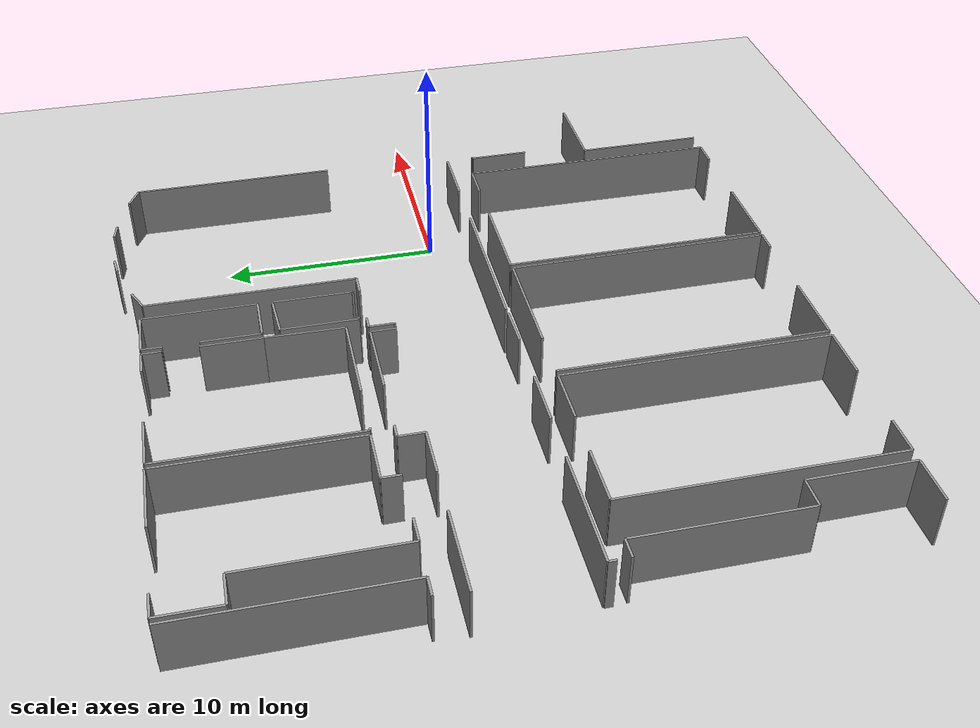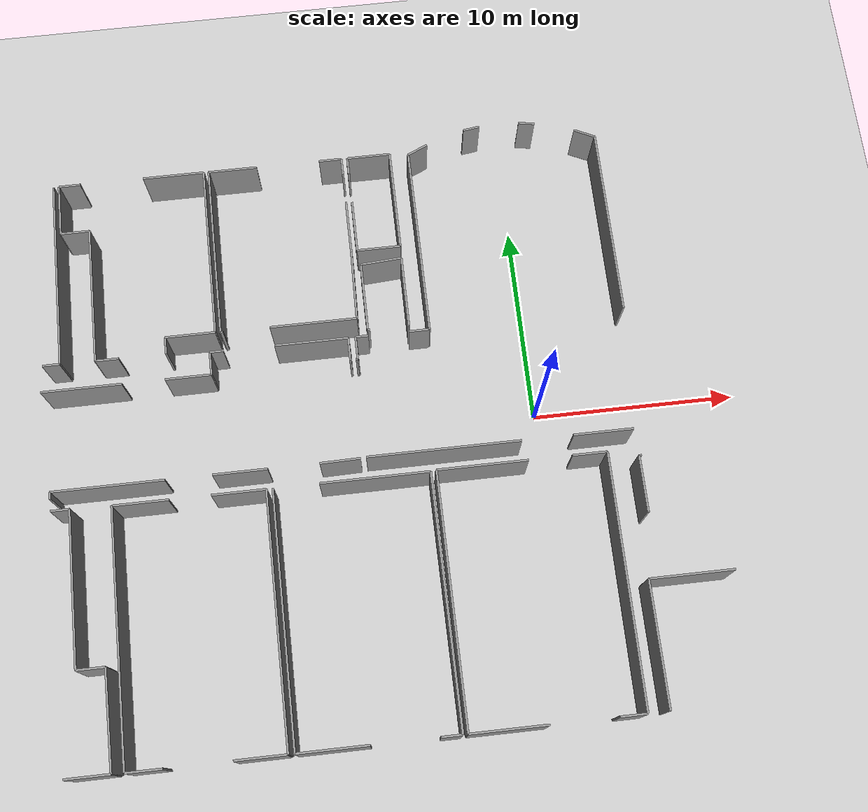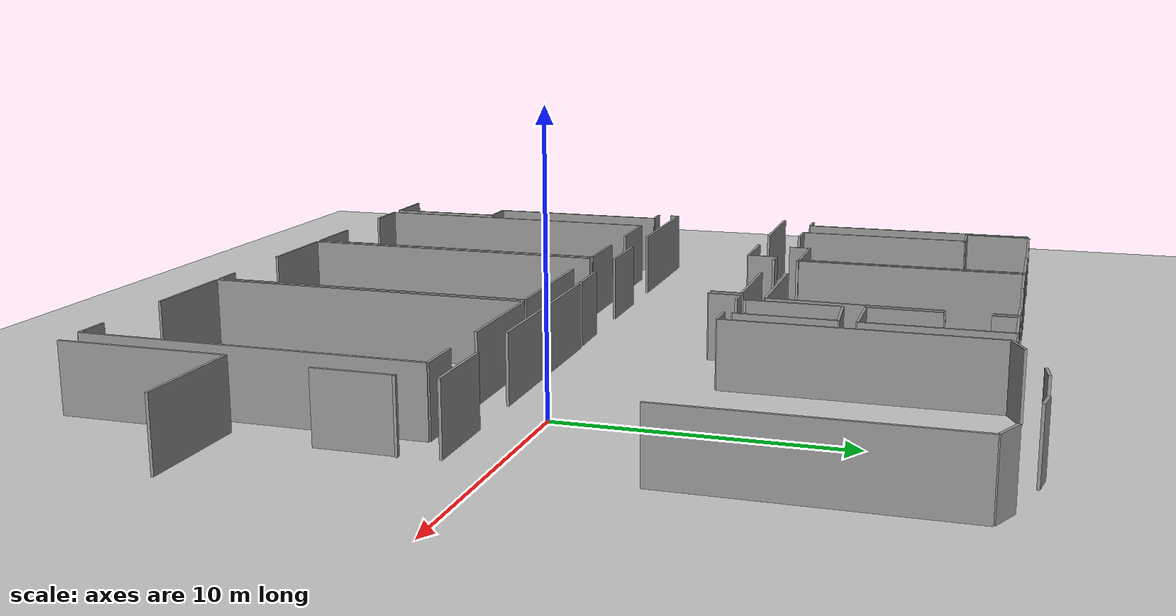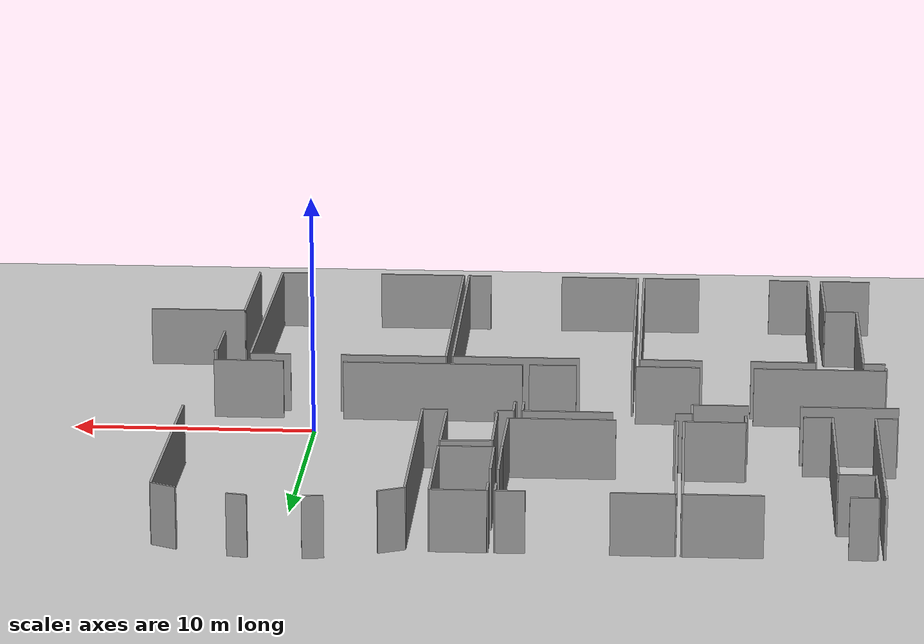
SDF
<sdf version="1.6">
 <world name="default">
  <model name="ground_plane">
   <static>1</static>
   <link name="link">
    <collision name="collision">
     <geometry><plane><normal>0 0 1</normal><size>100 100</size></plane></geometry>
     <surface><friction><ode><mu>100</mu><mu2>50</mu2></ode></friction></surface>
    </collision>
    <visual name="visual">
     <cast_shadows>0</cast_shadows>
     <geometry><plane><normal>0 0 1</normal><size>100 100</size></plane></geometry>
     <material>
      <script><uri>file://media/materials/scripts/gazebo.material</uri><name>Gazebo/Grey</name></script>
     </material>
    </visual>
   </link>
  </model>
  <model name="50056459">
   <static>1</static>
   <link name="Wall_7">
    <collision name="Wall_7_Collision">
     <geometry><box><size>1.16222145053 0.1 2.5</size></box></geometry>
     <pose>0.581110725266 0 1.25 0 0 0</pose>
    </collision>
    <visual name="Wall_7_Visual">
     <pose>0.581110725266 0 1.25 0 0 0</pose>
     <geometry><box><size>1.16222145053 0.1 2.5</size></box></geometry>
     <material>
      <script><uri>file://media/materials/scripts/gazebo.material</uri><name>Gazebo/Grey</name></script>
      <ambient>1 1 1 1</ambient>
     </material>
    </visual>
    <pose>46.2513318709 -11.9738792381 0 0 0 1.57079632679</pose>
   </link>
   <link name="Wall_8">
    <collision name="Wall_8_Collision">
     <geometry><box><size>3.63200555617 0.1 2.5</size></box></geometry>
     <pose>1.81600277808 0 1.25 0 0 0</pose>
    </collision>
    <visual name="Wall_8_Visual">
     <pose>1.81600277808 0 1.25 0 0 0</pose>
     <geometry><box><size>3.63200555617 0.1 2.5</size></box></geometry>
     <material>
      <script><uri>file://media/materials/scripts/gazebo.material</uri><name>Gazebo/Grey</name></script>
      <ambient>1 1 1 1</ambient>
     </material>
    </visual>
    <pose>46.2513318709 -10.8116577875 0 0 0 3.14159265359</pose>
   </link>
   <link name="Wall_9">
    <collision name="Wall_9_Collision">
     <geometry><box><size>0.666062489942 0.1 2.5</size></box></geometry>
     <pose>0.333031244971 0 1.25 0 0 0</pose>
    </collision>
    <visual name="Wall_9_Visual">
     <pose>0.333031244971 0 1.25 0 0 0</pose>
     <geometry><box><size>0.666062489942 0.1 2.5</size></box></geometry>
     <material>
      <script><uri>file://media/materials/scripts/gazebo.material</uri><name>Gazebo/Grey</name></script>
      <ambient>1 1 1 1</ambient>
     </material>
    </visual>
    <pose>40.1153243497 -10.8116577875 0 0 0 3.14159265359</pose>
   </link>
   <link name="Wall_10">
    <collision name="Wall_10_Collision">
     <geometry><box><size>1.16222145053 0.1 2.5</size></box></geometry>
     <pose>0.581110725266 0 1.25 0 0 0</pose>
    </collision>
    <visual name="Wall_10_Visual">
     <pose>0.581110725266 0 1.25 0 0 0</pose>
     <geometry><box><size>1.16222145053 0.1 2.5</size></box></geometry>
     <material>
      <script><uri>file://media/materials/scripts/gazebo.material</uri><name>Gazebo/Grey</name></script>
      <ambient>1 1 1 1</ambient>
     </material>
    </visual>
    <pose>39.4492618598 -10.8116577875 0 0 0 -1.57079632679</pose>
   </link>
   <link name="Wall_11">
    <collision name="Wall_11_Collision">
     <geometry><box><size>2.26329118213 0.1 2.5</size></box></geometry>
     <pose>1.13164559106 0 1.25 0 0 0</pose>
    </collision>
    <visual name="Wall_11_Visual">
     <pose>1.13164559106 0 1.25 0 0 0</pose>
     <geometry><box><size>2.26329118213 0.1 2.5</size></box></geometry>
     <material>
      <script><uri>file://media/materials/scripts/gazebo.material</uri><name>Gazebo/Grey</name></script>
      <ambient>1 1 1 1</ambient>
     </material>
    </visual>
    <pose>39.4492618598 -11.9738792381 0 0 0 3.14159265359</pose>
   </link>
   <link name="Wall_12">
    <collision name="Wall_12_Collision">
     <geometry><box><size>3.95148517367 0.1 2.5</size></box></geometry>
     <pose>1.97574258684 0 1.25 0 0 0</pose>
    </collision>
    <visual name="Wall_12_Visual">
     <pose>1.97574258684 0 1.25 0 0 0</pose>
     <geometry><box><size>3.95148517367 0.1 2.5</size></box></geometry>
     <material>
      <script><uri>file://media/materials/scripts/gazebo.material</uri><name>Gazebo/Grey</name></script>
      <ambient>1 1 1 1</ambient>
     </material>
    </visual>
    <pose>35.1035937222 -11.9738792381 0 0 0 3.14159265359</pose>
   </link>
   <link name="Wall_34">
    <collision name="Wall_34_Collision">
     <geometry><box><size>0.353019895483 0.1 2.5</size></box></geometry>
     <pose>0.176509947742 0 1.25 0 0 0</pose>
    </collision>
    <visual name="Wall_34_Visual">
     <pose>0.176509947742 0 1.25 0 0 0</pose>
     <geometry><box><size>0.353019895483 0.1 2.5</size></box></geometry>
     <material>
      <script><uri>file://media/materials/scripts/gazebo.material</uri><name>Gazebo/Grey</name></script>
      <ambient>1 1 1 1</ambient>
     </material>
    </visual>
    <pose>31.4314414697 -17.3587878069 0 0 0 1.57079632679</pose>
   </link>
   <link name="Wall_35">
    <collision name="Wall_35_Collision">
     <geometry><box><size>5.46875926381 0.1 2.5</size></box></geometry>
     <pose>2.7343796319 0 1.25 0 0 0</pose>
    </collision>
    <visual name="Wall_35_Visual">
     <pose>2.7343796319 0 1.25 0 0 0</pose>
     <geometry><box><size>5.46875926381 0.1 2.5</size></box></geometry>
     <material>
      <script><uri>file://media/materials/scripts/gazebo.material</uri><name>Gazebo/Grey</name></script>
      <ambient>1 1 1 1</ambient>
     </material>
    </visual>
    <pose>31.4314414697 -17.0057679114 0 0 0 0.0</pose>
   </link>
   <link name="Wall_36">
    <collision name="Wall_36_Collision">
     <geometry><box><size>2.65374744848 0.1 2.5</size></box></geometry>
     <pose>1.32687372424 0 1.25 0 0 0</pose>
    </collision>
    <visual name="Wall_36_Visual">
     <pose>1.32687372424 0 1.25 0 0 0</pose>
     <geometry><box><size>2.65374744848 0.1 2.5</size></box></geometry>
     <material>
      <script><uri>file://media/materials/scripts/gazebo.material</uri><name>Gazebo/Grey</name></script>
      <ambient>1 1 1 1</ambient>
     </material>
    </visual>
    <pose>39.1521424276 -17.0057679114 0 0 0 0.0</pose>
   </link>
   <link name="Wall_37">
    <collision name="Wall_37_Collision">
     <geometry><box><size>1.96681117286 0.1 2.5</size></box></geometry>
     <pose>0.983405586429 0 1.25 0 0 0</pose>
    </collision>
    <visual name="Wall_37_Visual">
     <pose>0.983405586429 0 1.25 0 0 0</pose>
     <geometry><box><size>1.96681117286 0.1 2.5</size></box></geometry>
     <material>
      <script><uri>file://media/materials/scripts/gazebo.material</uri><name>Gazebo/Grey</name></script>
      <ambient>1 1 1 1</ambient>
     </material>
    </visual>
    <pose>44.2848213303 -17.0057679114 0 0 0 0.0174846509602</pose>
   </link>
   <link name="Wall_53">
    <collision name="Wall_53_Collision">
     <geometry><box><size>0.864593832316 0.1 2.5</size></box></geometry>
     <pose>0.432296916158 0 1.25 0 0 0</pose>
    </collision>
    <visual name="Wall_53_Visual">
     <pose>0.432296916158 0 1.25 0 0 0</pose>
     <geometry><box><size>0.864593832316 0.1 2.5</size></box></geometry>
     <material>
      <script><uri>file://media/materials/scripts/gazebo.material</uri><name>Gazebo/Grey</name></script>
      <ambient>1 1 1 1</ambient>
     </material>
    </visual>
    <pose>32.1332463771 -10.6236289564 0 0 0 3.14159265359</pose>
   </link>
   <link name="Wall_58">
    <collision name="Wall_58_Collision">
     <geometry><box><size>9.56507748002 0.1 2.5</size></box></geometry>
     <pose>4.78253874001 0 1.25 0 0 0</pose>
    </collision>
    <visual name="Wall_58_Visual">
     <pose>4.78253874001 0 1.25 0 0 0</pose>
     <geometry><box><size>9.56507748002 0.1 2.5</size></box></geometry>
     <material>
      <script><uri>file://media/materials/scripts/gazebo.material</uri><name>Gazebo/Grey</name></script>
      <ambient>1 1 1 1</ambient>
     </material>
    </visual>
    <pose>32.1339239584 -1.05855150042 0 0 0 -1.57086716588</pose>
   </link>
   <link name="Wall_59">
    <collision name="Wall_59_Collision">
     <geometry><box><size>2.47266382647 0.1 2.5</size></box></geometry>
     <pose>1.23633191324 0 1.25 0 0 0</pose>
    </collision>
    <visual name="Wall_59_Visual">
     <pose>1.23633191324 0 1.25 0 0 0</pose>
     <geometry><box><size>2.47266382647 0.1 2.5</size></box></geometry>
     <material>
      <script><uri>file://media/materials/scripts/gazebo.material</uri><name>Gazebo/Grey</name></script>
      <ambient>1 1 1 1</ambient>
     </material>
    </visual>
    <pose>39.7850034303 -9.79952061118 0 0 0 3.14159265359</pose>
   </link>
   <link name="Wall_60">
    <collision name="Wall_60_Collision">
     <geometry><box><size>0.84748490264 0.1 2.5</size></box></geometry>
     <pose>0.42374245132 0 1.25 0 0 0</pose>
    </collision>
    <visual name="Wall_60_Visual">
     <pose>0.42374245132 0 1.25 0 0 0</pose>
     <geometry><box><size>0.84748490264 0.1 2.5</size></box></geometry>
     <material>
      <script><uri>file://media/materials/scripts/gazebo.material</uri><name>Gazebo/Grey</name></script>
      <ambient>1 1 1 1</ambient>
     </material>
    </visual>
    <pose>37.3123396038 -9.79952061118 0 0 0 -1.57079632679</pose>
   </link>
   <link name="Wall_61">
    <collision name="Wall_61_Collision">
     <geometry><box><size>1.15273531131 0.1 2.5</size></box></geometry>
     <pose>0.576367655653 0 1.25 0 0 0</pose>
    </collision>
    <visual name="Wall_61_Visual">
     <pose>0.576367655653 0 1.25 0 0 0</pose>
     <geometry><box><size>1.15273531131 0.1 2.5</size></box></geometry>
     <material>
      <script><uri>file://media/materials/scripts/gazebo.material</uri><name>Gazebo/Grey</name></script>
      <ambient>1 1 1 1</ambient>
     </material>
    </visual>
    <pose>35.0044974464 -10.6470055138 0 0 0 3.14159265359</pose>
   </link>
   <link name="Wall_62">
    <collision name="Wall_62_Collision">
     <geometry><box><size>6.97349809854 0.1 2.5</size></box></geometry>
     <pose>3.48674904927 0 1.25 0 0 0</pose>
    </collision>
    <visual name="Wall_62_Visual">
     <pose>3.48674904927 0 1.25 0 0 0</pose>
     <geometry><box><size>6.97349809854 0.1 2.5</size></box></geometry>
     <material>
      <script><uri>file://media/materials/scripts/gazebo.material</uri><name>Gazebo/Grey</name></script>
      <ambient>1 1 1 1</ambient>
     </material>
    </visual>
    <pose>33.8517621351 -10.6470055138 0 0 0 1.57079632679</pose>
   </link>
   <link name="Wall_63">
    <collision name="Wall_63_Collision">
     <geometry><box><size>1.44053799961 0.1 2.5</size></box></geometry>
     <pose>0.720268999805 0 1.25 0 0 0</pose>
    </collision>
    <visual name="Wall_63_Visual">
     <pose>0.720268999805 0 1.25 0 0 0</pose>
     <geometry><box><size>1.44053799961 0.1 2.5</size></box></geometry>
     <material>
      <script><uri>file://media/materials/scripts/gazebo.material</uri><name>Gazebo/Grey</name></script>
      <ambient>1 1 1 1</ambient>
     </material>
    </visual>
    <pose>33.8517621351 -3.67350741528 0 0 0 3.14159265359</pose>
   </link>
   <link name="Wall_64">
    <collision name="Wall_64_Collision">
     <geometry><box><size>2.62461144943 0.1 2.5</size></box></geometry>
     <pose>1.31230572472 0 1.25 0 0 0</pose>
    </collision>
    <visual name="Wall_64_Visual">
     <pose>1.31230572472 0 1.25 0 0 0</pose>
     <geometry><box><size>2.62461144943 0.1 2.5</size></box></geometry>
     <material>
      <script><uri>file://media/materials/scripts/gazebo.material</uri><name>Gazebo/Grey</name></script>
      <ambient>1 1 1 1</ambient>
     </material>
    </visual>
    <pose>32.4112241354 -3.67350741528 0 0 0 1.57079632679</pose>
   </link>
   <link name="Wall_65">
    <collision name="Wall_65_Collision">
     <geometry><box><size>1.09429391786 0.1 2.5</size></box></geometry>
     <pose>0.54714695893 0 1.25 0 0 0</pose>
    </collision>
    <visual name="Wall_65_Visual">
     <pose>0.54714695893 0 1.25 0 0 0</pose>
     <geometry><box><size>1.09429391786 0.1 2.5</size></box></geometry>
     <material>
      <script><uri>file://media/materials/scripts/gazebo.material</uri><name>Gazebo/Grey</name></script>
      <ambient>1 1 1 1</ambient>
     </material>
    </visual>
    <pose>32.4112241354 -1.04889596585 0 0 0 0.0</pose>
   </link>
   <link name="Wall_66">
    <collision name="Wall_66_Collision">
     <geometry><box><size>3.0831646438 0.1 2.5</size></box></geometry>
     <pose>1.5415823219 0 1.25 0 0 0</pose>
    </collision>
    <visual name="Wall_66_Visual">
     <pose>1.5415823219 0 1.25 0 0 0</pose>
     <geometry><box><size>3.0831646438 0.1 2.5</size></box></geometry>
     <material>
      <script><uri>file://media/materials/scripts/gazebo.material</uri><name>Gazebo/Grey</name></script>
      <ambient>1 1 1 1</ambient>
     </material>
    </visual>
    <pose>36.6964181355 -1.04889596585 0 0 0 0.0</pose>
   </link>
   <link name="Wall_67">
    <collision name="Wall_67_Collision">
     <geometry><box><size>8.75062632426 0.1 2.5</size></box></geometry>
     <pose>4.37531316213 0 1.25 0 0 0</pose>
    </collision>
    <visual name="Wall_67_Visual">
     <pose>4.37531316213 0 1.25 0 0 0</pose>
     <geometry><box><size>8.75062632426 0.1 2.5</size></box></geometry>
     <material>
      <script><uri>file://media/materials/scripts/gazebo.material</uri><name>Gazebo/Grey</name></script>
      <ambient>1 1 1 1</ambient>
     </material>
    </visual>
    <pose>39.7795827793 -1.04889596585 0 0 0 -1.57017686813</pose>
   </link>
   <link name="Wall_68">
    <collision name="Wall_68_Collision">
     <geometry><box><size>4.30365809244 0.1 2.5</size></box></geometry>
     <pose>2.15182904622 0 1.25 0 0 0</pose>
    </collision>
    <visual name="Wall_68_Visual">
     <pose>2.15182904622 0 1.25 0 0 0</pose>
     <geometry><box><size>4.30365809244 0.1 2.5</size></box></geometry>
     <material>
      <script><uri>file://media/materials/scripts/gazebo.material</uri><name>Gazebo/Grey</name></script>
      <ambient>1 1 1 1</ambient>
     </material>
    </visual>
    <pose>46.7757798538 -9.83458544725 0 0 0 3.14159265359</pose>
   </link>
   <link name="Wall_69">
    <collision name="Wall_69_Collision">
     <geometry><box><size>0.134499902598 0.1 2.5</size></box></geometry>
     <pose>0.0672499512988 0 1.25 0 0 0</pose>
    </collision>
    <visual name="Wall_69_Visual">
     <pose>0.0672499512988 0 1.25 0 0 0</pose>
     <geometry><box><size>0.134499902598 0.1 2.5</size></box></geometry>
     <material>
      <script><uri>file://media/materials/scripts/gazebo.material</uri><name>Gazebo/Grey</name></script>
      <ambient>1 1 1 1</ambient>
     </material>
    </visual>
    <pose>40.1729187665 -9.83458544725 0 0 0 3.14159265359</pose>
   </link>
   <link name="Wall_70">
    <collision name="Wall_70_Collision">
     <geometry><box><size>8.77603394683 0.1 2.5</size></box></geometry>
     <pose>4.38801697341 0 1.25 0 0 0</pose>
    </collision>
    <visual name="Wall_70_Visual">
     <pose>4.38801697341 0 1.25 0 0 0</pose>
     <geometry><box><size>8.77603394683 0.1 2.5</size></box></geometry>
     <material>
      <script><uri>file://media/materials/scripts/gazebo.material</uri><name>Gazebo/Grey</name></script>
      <ambient>1 1 1 1</ambient>
     </material>
    </visual>
    <pose>40.0384188639 -9.83458544725 0 0 0 1.57079632679</pose>
   </link>
   <link name="Wall_71">
    <collision name="Wall_71_Collision">
     <geometry><box><size>2.46470224534 0.1 2.5</size></box></geometry>
     <pose>1.23235112267 0 1.25 0 0 0</pose>
    </collision>
    <visual name="Wall_71_Visual">
     <pose>1.23235112267 0 1.25 0 0 0</pose>
     <geometry><box><size>2.46470224534 0.1 2.5</size></box></geometry>
     <material>
      <script><uri>file://media/materials/scripts/gazebo.material</uri><name>Gazebo/Grey</name></script>
      <ambient>1 1 1 1</ambient>
     </material>
    </visual>
    <pose>40.0384188639 -1.05855150042 0 0 0 0.0</pose>
   </link>
   <link name="Wall_72">
    <collision name="Wall_72_Collision">
     <geometry><box><size>1.15002498581 0.1 2.5</size></box></geometry>
     <pose>0.575012492907 0 1.25 0 0 0</pose>
    </collision>
    <visual name="Wall_72_Visual">
     <pose>0.575012492907 0 1.25 0 0 0</pose>
     <geometry><box><size>1.15002498581 0.1 2.5</size></box></geometry>
     <material>
      <script><uri>file://media/materials/scripts/gazebo.material</uri><name>Gazebo/Grey</name></script>
      <ambient>1 1 1 1</ambient>
     </material>
    </visual>
    <pose>45.699272447 -1.05855150042 0 0 0 0.0</pose>
   </link>
   <link name="Wall_73">
    <collision name="Wall_73_Collision">
     <geometry><box><size>0.870861460018 0.1 2.5</size></box></geometry>
     <pose>0.435430730009 0 1.25 0 0 0</pose>
    </collision>
    <visual name="Wall_73_Visual">
     <pose>0.435430730009 0 1.25 0 0 0</pose>
     <geometry><box><size>0.870861460018 0.1 2.5</size></box></geometry>
     <material>
      <script><uri>file://media/materials/scripts/gazebo.material</uri><name>Gazebo/Grey</name></script>
      <ambient>1 1 1 1</ambient>
     </material>
    </visual>
    <pose>46.8492974328 -1.05855150042 0 0 0 -1.57079632679</pose>
   </link>
   <link name="Wall_74">
    <collision name="Wall_74_Collision">
     <geometry><box><size>2.7597889334 0.1 2.5</size></box></geometry>
     <pose>1.3798944667 0 1.25 0 0 0</pose>
    </collision>
    <visual name="Wall_74_Visual">
     <pose>1.3798944667 0 1.25 0 0 0</pose>
     <geometry><box><size>2.7597889334 0.1 2.5</size></box></geometry>
     <material>
      <script><uri>file://media/materials/scripts/gazebo.material</uri><name>Gazebo/Grey</name></script>
      <ambient>1 1 1 1</ambient>
     </material>
    </visual>
    <pose>46.8492974328 -3.5069917928 0 0 0 -1.57079632679</pose>
   </link>
   <link name="Wall_75">
    <collision name="Wall_75_Collision">
     <geometry><box><size>3.56856208604 0.1 2.5</size></box></geometry>
     <pose>1.78428104302 0 1.25 0 0 0</pose>
    </collision>
    <visual name="Wall_75_Visual">
     <pose>1.78428104302 0 1.25 0 0 0</pose>
     <geometry><box><size>3.56856208604 0.1 2.5</size></box></geometry>
     <material>
      <script><uri>file://media/materials/scripts/gazebo.material</uri><name>Gazebo/Grey</name></script>
      <ambient>1 1 1 1</ambient>
     </material>
    </visual>
    <pose>46.8492974328 -6.2667807262 0 0 0 -1.59139924153</pose>
   </link>
   <link name="Wall_76">
    <collision name="Wall_76_Collision">
     <geometry><box><size>2.17283406879 0.1 2.5</size></box></geometry>
     <pose>1.0864170344 0 1.25 0 0 0</pose>
    </collision>
    <visual name="Wall_76_Visual">
     <pose>1.0864170344 0 1.25 0 0 0</pose>
     <geometry><box><size>2.17283406879 0.1 2.5</size></box></geometry>
     <material>
      <script><uri>file://media/materials/scripts/gazebo.material</uri><name>Gazebo/Grey</name></script>
      <ambient>1 1 1 1</ambient>
     </material>
    </visual>
    <pose>49.3253491662 -6.21613151854 0 0 0 3.14159265359</pose>
   </link>
   <link name="Wall_77">
    <collision name="Wall_77_Collision">
     <geometry><box><size>2.66967061075 0.1 2.5</size></box></geometry>
     <pose>1.33483530538 0 1.25 0 0 0</pose>
    </collision>
    <visual name="Wall_77_Visual">
     <pose>1.33483530538 0 1.25 0 0 0</pose>
     <geometry><box><size>2.66967061075 0.1 2.5</size></box></geometry>
     <material>
      <script><uri>file://media/materials/scripts/gazebo.material</uri><name>Gazebo/Grey</name></script>
      <ambient>1 1 1 1</ambient>
     </material>
    </visual>
    <pose>47.1525150974 -6.21613151854 0 0 0 1.57079632679</pose>
   </link>
   <link name="Wall_78">
    <collision name="Wall_78_Collision">
     <geometry><box><size>0.900675040443 0.1 2.5</size></box></geometry>
     <pose>0.450337520222 0 1.25 0 0 0</pose>
    </collision>
    <visual name="Wall_78_Visual">
     <pose>0.450337520222 0 1.25 0 0 0</pose>
     <geometry><box><size>0.900675040443 0.1 2.5</size></box></geometry>
     <material>
      <script><uri>file://media/materials/scripts/gazebo.material</uri><name>Gazebo/Grey</name></script>
      <ambient>1 1 1 1</ambient>
     </material>
    </visual>
    <pose>47.1525150974 -1.95922654086 0 0 0 1.57079632679</pose>
   </link>
   <link name="Wall_79">
    <collision name="Wall_79_Collision">
     <geometry><box><size>2.17876290581 0.1 2.5</size></box></geometry>
     <pose>1.0893814529 0 1.25 0 0 0</pose>
    </collision>
    <visual name="Wall_79_Visual">
     <pose>1.0893814529 0 1.25 0 0 0</pose>
     <geometry><box><size>2.17876290581 0.1 2.5</size></box></geometry>
     <material>
      <script><uri>file://media/materials/scripts/gazebo.material</uri><name>Gazebo/Grey</name></script>
      <ambient>1 1 1 1</ambient>
     </material>
    </visual>
    <pose>47.1525150974 -1.05855150042 0 0 0 0.0</pose>
   </link>
   <link name="Wall_80">
    <collision name="Wall_80_Collision">
     <geometry><box><size>5.15758342584 0.1 2.5</size></box></geometry>
     <pose>2.57879171292 0 1.25 0 0 0</pose>
    </collision>
    <visual name="Wall_80_Visual">
     <pose>2.57879171292 0 1.25 0 0 0</pose>
     <geometry><box><size>5.15758342584 0.1 2.5</size></box></geometry>
     <material>
      <script><uri>file://media/materials/scripts/gazebo.material</uri><name>Gazebo/Grey</name></script>
      <ambient>1 1 1 1</ambient>
     </material>
    </visual>
    <pose>49.3312780032 -1.05855150042 0 0 0 -1.57194586483</pose>
   </link>
   <link name="Wall_81">
    <collision name="Wall_81_Collision">
     <geometry><box><size>0.995705828047 0.1 2.5</size></box></geometry>
     <pose>0.497852914023 0 1.25 0 0 0</pose>
    </collision>
    <visual name="Wall_81_Visual">
     <pose>0.497852914023 0 1.25 0 0 0</pose>
     <geometry><box><size>0.995705828047 0.1 2.5</size></box></geometry>
     <material>
      <script><uri>file://media/materials/scripts/gazebo.material</uri><name>Gazebo/Grey</name></script>
      <ambient>1 1 1 1</ambient>
     </material>
    </visual>
    <pose>49.5425139963 -30.2900895254 0 0 0 3.14159265359</pose>
   </link>
   <link name="Wall_82">
    <collision name="Wall_82_Collision">
     <geometry><box><size>3.40061151719 0.1 2.5</size></box></geometry>
     <pose>1.70030575859 0 1.25 0 0 0</pose>
    </collision>
    <visual name="Wall_82_Visual">
     <pose>1.70030575859 0 1.25 0 0 0</pose>
     <geometry><box><size>3.40061151719 0.1 2.5</size></box></geometry>
     <material>
      <script><uri>file://media/materials/scripts/gazebo.material</uri><name>Gazebo/Grey</name></script>
      <ambient>1 1 1 1</ambient>
     </material>
    </visual>
    <pose>45.3591265976 -30.2900895254 0 0 0 3.14159265359</pose>
   </link>
   <link name="Wall_83">
    <collision name="Wall_83_Collision">
     <geometry><box><size>12.3036919715 0.1 2.5</size></box></geometry>
     <pose>6.15184598575 0 1.25 0 0 0</pose>
    </collision>
    <visual name="Wall_83_Visual">
     <pose>6.15184598575 0 1.25 0 0 0</pose>
     <geometry><box><size>12.3036919715 0.1 2.5</size></box></geometry>
     <material>
      <script><uri>file://media/materials/scripts/gazebo.material</uri><name>Gazebo/Grey</name></script>
      <ambient>1 1 1 1</ambient>
     </material>
    </visual>
    <pose>41.9585150804 -30.2900895254 0 0 0 1.57079632679</pose>
   </link>
   <link name="Wall_84">
    <collision name="Wall_84_Collision">
     <geometry><box><size>5.3318878264 0.1 2.5</size></box></geometry>
     <pose>2.6659439132 0 1.25 0 0 0</pose>
    </collision>
    <visual name="Wall_84_Visual">
     <pose>2.6659439132 0 1.25 0 0 0</pose>
     <geometry><box><size>5.3318878264 0.1 2.5</size></box></geometry>
     <material>
      <script><uri>file://media/materials/scripts/gazebo.material</uri><name>Gazebo/Grey</name></script>
      <ambient>1 1 1 1</ambient>
     </material>
    </visual>
    <pose>44.173697985 -17.9863975539 0 0 0 0.0</pose>
   </link>
   <link name="Wall_85">
    <collision name="Wall_85_Collision">
     <geometry><box><size>12.3037473893 0.1 2.5</size></box></geometry>
     <pose>6.15187369467 0 1.25 0 0 0</pose>
    </collision>
    <visual name="Wall_85_Visual">
     <pose>6.15187369467 0 1.25 0 0 0</pose>
     <geometry><box><size>12.3037473893 0.1 2.5</size></box></geometry>
     <material>
      <script><uri>file://media/materials/scripts/gazebo.material</uri><name>Gazebo/Grey</name></script>
      <ambient>1 1 1 1</ambient>
     </material>
    </visual>
    <pose>49.5055858114 -17.9863975539 0 0 0 -1.56779494525</pose>
   </link>
   <link name="Wall_86">
    <collision name="Wall_86_Collision">
     <geometry><box><size>2.46978410563 0.1 2.5</size></box></geometry>
     <pose>1.23489205282 0 1.25 0 0 0</pose>
    </collision>
    <visual name="Wall_86_Visual">
     <pose>1.23489205282 0 1.25 0 0 0</pose>
     <geometry><box><size>2.46978410563 0.1 2.5</size></box></geometry>
     <material>
      <script><uri>file://media/materials/scripts/gazebo.material</uri><name>Gazebo/Grey</name></script>
      <ambient>1 1 1 1</ambient>
     </material>
    </visual>
    <pose>41.6605486715 -30.2885649673 0 0 0 3.14159265359</pose>
   </link>
   <link name="Wall_87">
    <collision name="Wall_87_Collision">
     <geometry><box><size>1.73359194356 0.1 2.5</size></box></geometry>
     <pose>0.866795971779 0 1.25 0 0 0</pose>
    </collision>
    <visual name="Wall_87_Visual">
     <pose>0.866795971779 0 1.25 0 0 0</pose>
     <geometry><box><size>1.73359194356 0.1 2.5</size></box></geometry>
     <material>
      <script><uri>file://media/materials/scripts/gazebo.material</uri><name>Gazebo/Grey</name></script>
      <ambient>1 1 1 1</ambient>
     </material>
    </visual>
    <pose>36.0527158308 -30.2885649673 0 0 0 3.14159265359</pose>
   </link>
   <link name="Wall_88">
    <collision name="Wall_88_Collision">
     <geometry><box><size>12.2948834137 0.1 2.5</size></box></geometry>
     <pose>6.14744170683 0 1.25 0 0 0</pose>
    </collision>
    <visual name="Wall_88_Visual">
     <pose>6.14744170683 0 1.25 0 0 0</pose>
     <geometry><box><size>12.2948834137 0.1 2.5</size></box></geometry>
     <material>
      <script><uri>file://media/materials/scripts/gazebo.material</uri><name>Gazebo/Grey</name></script>
      <ambient>1 1 1 1</ambient>
     </material>
    </visual>
    <pose>34.3191238873 -30.2885649673 0 0 0 1.57079632679</pose>
   </link>
   <link name="Wall_89">
    <collision name="Wall_89_Collision">
     <geometry><box><size>2.70371907476 0.1 2.5</size></box></geometry>
     <pose>1.35185953738 0 1.25 0 0 0</pose>
    </collision>
    <visual name="Wall_89_Visual">
     <pose>1.35185953738 0 1.25 0 0 0</pose>
     <geometry><box><size>2.70371907476 0.1 2.5</size></box></geometry>
     <material>
      <script><uri>file://media/materials/scripts/gazebo.material</uri><name>Gazebo/Grey</name></script>
      <ambient>1 1 1 1</ambient>
     </material>
    </visual>
    <pose>34.3191238873 -17.9936815537 0 0 0 0.0</pose>
   </link>
   <link name="Wall_90">
    <collision name="Wall_90_Collision">
     <geometry><box><size>2.61292317074 0.1 2.5</size></box></geometry>
     <pose>1.30646158537 0 1.25 0 0 0</pose>
    </collision>
    <visual name="Wall_90_Visual">
     <pose>1.30646158537 0 1.25 0 0 0</pose>
     <geometry><box><size>2.61292317074 0.1 2.5</size></box></geometry>
     <material>
      <script><uri>file://media/materials/scripts/gazebo.material</uri><name>Gazebo/Grey</name></script>
      <ambient>1 1 1 1</ambient>
     </material>
    </visual>
    <pose>39.039325129 -17.9936815537 0 0 0 0.0</pose>
   </link>
   <link name="Wall_91">
    <collision name="Wall_91_Collision">
     <geometry><box><size>12.2948862155 0.1 2.5</size></box></geometry>
     <pose>6.14744310774 0 1.25 0 0 0</pose>
    </collision>
    <visual name="Wall_91_Visual">
     <pose>6.14744310774 0 1.25 0 0 0</pose>
     <geometry><box><size>12.2948862155 0.1 2.5</size></box></geometry>
     <material>
      <script><uri>file://media/materials/scripts/gazebo.material</uri><name>Gazebo/Grey</name></script>
      <ambient>1 1 1 1</ambient>
     </material>
    </visual>
    <pose>41.6522482997 -17.9936815537 0 0 0 -1.57012121909</pose>
   </link>
   <link name="Wall_92">
    <collision name="Wall_92_Collision">
     <geometry><box><size>2.14962690676 0.1 2.5</size></box></geometry>
     <pose>1.07481345338 0 1.25 0 0 0</pose>
    </collision>
    <visual name="Wall_92_Visual">
     <pose>1.07481345338 0 1.25 0 0 0</pose>
     <geometry><box><size>2.14962690676 0.1 2.5</size></box></geometry>
     <material>
      <script><uri>file://media/materials/scripts/gazebo.material</uri><name>Gazebo/Grey</name></script>
      <ambient>1 1 1 1</ambient>
     </material>
    </visual>
    <pose>33.7370814876 -30.271117247 0 0 0 3.14159265359</pose>
   </link>
   <link name="Wall_98">
    <collision name="Wall_98_Collision">
     <geometry><box><size>0.900844435786 0.1 2.5</size></box></geometry>
     <pose>0.450422217893 0 1.25 0 0 0</pose>
    </collision>
    <visual name="Wall_98_Visual">
     <pose>0.450422217893 0 1.25 0 0 0</pose>
     <geometry><box><size>0.900844435786 0.1 2.5</size></box></geometry>
     <material>
      <script><uri>file://media/materials/scripts/gazebo.material</uri><name>Gazebo/Grey</name></script>
      <ambient>1 1 1 1</ambient>
     </material>
    </visual>
    <pose>31.4309332836 -17.9350707649 0 0 0 0.0</pose>
   </link>
   <link name="Wall_99">
    <collision name="Wall_99_Collision">
     <geometry><box><size>7.57248003252 0.1 2.5</size></box></geometry>
     <pose>3.78624001626 0 1.25 0 0 0</pose>
    </collision>
    <visual name="Wall_99_Visual">
     <pose>3.78624001626 0 1.25 0 0 0</pose>
     <geometry><box><size>7.57248003252 0.1 2.5</size></box></geometry>
     <material>
      <script><uri>file://media/materials/scripts/gazebo.material</uri><name>Gazebo/Grey</name></script>
      <ambient>1 1 1 1</ambient>
     </material>
    </visual>
    <pose>32.3317777194 -17.9350707649 0 0 0 -1.57079632679</pose>
   </link>
   <link name="Wall_100">
    <collision name="Wall_100_Collision">
     <geometry><box><size>1.36939195542 0.1 2.5</size></box></geometry>
     <pose>0.684695977708 0 1.25 0 0 0</pose>
    </collision>
    <visual name="Wall_100_Visual">
     <pose>0.684695977708 0 1.25 0 0 0</pose>
     <geometry><box><size>1.36939195542 0.1 2.5</size></box></geometry>
     <material>
      <script><uri>file://media/materials/scripts/gazebo.material</uri><name>Gazebo/Grey</name></script>
      <ambient>1 1 1 1</ambient>
     </material>
    </visual>
    <pose>32.3317777194 -25.5075507974 0 0 0 0.0</pose>
   </link>
   <link name="Wall_101">
    <collision name="Wall_101_Collision">
     <geometry><box><size>4.76370181452 0.1 2.5</size></box></geometry>
     <pose>2.38185090726 0 1.25 0 0 0</pose>
    </collision>
    <visual name="Wall_101_Visual">
     <pose>2.38185090726 0 1.25 0 0 0</pose>
     <geometry><box><size>4.76370181452 0.1 2.5</size></box></geometry>
     <material>
      <script><uri>file://media/materials/scripts/gazebo.material</uri><name>Gazebo/Grey</name></script>
      <ambient>1 1 1 1</ambient>
     </material>
    </visual>
    <pose>33.7011696748 -25.5075507974 0 0 0 -1.56325761964</pose>
   </link>
   <link name="Wall_126">
    <collision name="Wall_126_Collision">
     <geometry><box><size>2.92765971863 0.1 2.5</size></box></geometry>
     <pose>1.46382985932 0 1.25 0 0 0</pose>
    </collision>
    <visual name="Wall_126_Visual">
     <pose>1.46382985932 0 1.25 0 0 0</pose>
     <geometry><box><size>2.92765971863 0.1 2.5</size></box></geometry>
     <material>
      <script><uri>file://media/materials/scripts/gazebo.material</uri><name>Gazebo/Grey</name></script>
      <ambient>1 1 1 1</ambient>
     </material>
    </visual>
    <pose>59.46416865 -16.9390261462 0 0 0 3.14159265359</pose>
   </link>
   <link name="Wall_127">
    <collision name="Wall_127_Collision">
     <geometry><box><size>7.51234468564 0.1 2.5</size></box></geometry>
     <pose>3.75617234282 0 1.25 0 0 0</pose>
    </collision>
    <visual name="Wall_127_Visual">
     <pose>3.75617234282 0 1.25 0 0 0</pose>
     <geometry><box><size>7.51234468564 0.1 2.5</size></box></geometry>
     <material>
      <script><uri>file://media/materials/scripts/gazebo.material</uri><name>Gazebo/Grey</name></script>
      <ambient>1 1 1 1</ambient>
     </material>
    </visual>
    <pose>54.0319987804 -16.9390261462 0 0 0 3.14159265359</pose>
   </link>
   <link name="Wall_128">
    <collision name="Wall_128_Collision">
     <geometry><box><size>0.0938450202004 0.1 2.5</size></box></geometry>
     <pose>0.0469225101002 0 1.25 0 0 0</pose>
    </collision>
    <visual name="Wall_128_Visual">
     <pose>0.0469225101002 0 1.25 0 0 0</pose>
     <geometry><box><size>0.0938450202004 0.1 2.5</size></box></geometry>
     <material>
      <script><uri>file://media/materials/scripts/gazebo.material</uri><name>Gazebo/Grey</name></script>
      <ambient>1 1 1 1</ambient>
     </material>
    </visual>
    <pose>46.5196540947 -11.9491475179 0 0 0 0.0</pose>
   </link>
   <link name="Wall_129">
    <collision name="Wall_129_Collision">
     <geometry><box><size>1.14697586963 0.1 2.5</size></box></geometry>
     <pose>0.573487934817 0 1.25 0 0 0</pose>
    </collision>
    <visual name="Wall_129_Visual">
     <pose>0.573487934817 0 1.25 0 0 0</pose>
     <geometry><box><size>1.14697586963 0.1 2.5</size></box></geometry>
     <material>
      <script><uri>file://media/materials/scripts/gazebo.material</uri><name>Gazebo/Grey</name></script>
      <ambient>1 1 1 1</ambient>
     </material>
    </visual>
    <pose>46.6134991149 -11.9491475179 0 0 0 1.57079632679</pose>
   </link>
   <link name="Wall_130">
    <collision name="Wall_130_Collision">
     <geometry><box><size>0.636079514174 0.1 2.5</size></box></geometry>
     <pose>0.318039757087 0 1.25 0 0 0</pose>
    </collision>
    <visual name="Wall_130_Visual">
     <pose>0.318039757087 0 1.25 0 0 0</pose>
     <geometry><box><size>0.636079514174 0.1 2.5</size></box></geometry>
     <material>
      <script><uri>file://media/materials/scripts/gazebo.material</uri><name>Gazebo/Grey</name></script>
      <ambient>1 1 1 1</ambient>
     </material>
    </visual>
    <pose>46.6134991149 -10.8021716483 0 0 0 0.0</pose>
   </link>
   <link name="Wall_131">
    <collision name="Wall_131_Collision">
     <geometry><box><size>1.01908238543 0.1 2.5</size></box></geometry>
     <pose>0.509541192713 0 1.25 0 0 0</pose>
    </collision>
    <visual name="Wall_131_Visual">
     <pose>0.509541192713 0 1.25 0 0 0</pose>
     <geometry><box><size>1.01908238543 0.1 2.5</size></box></geometry>
     <material>
      <script><uri>file://media/materials/scripts/gazebo.material</uri><name>Gazebo/Grey</name></script>
      <ambient>1 1 1 1</ambient>
     </material>
    </visual>
    <pose>49.2579298195 -10.8021716483 0 0 0 0.0</pose>
   </link>
   <link name="Wall_132">
    <collision name="Wall_132_Collision">
     <geometry><box><size>9.60115866415 0.1 2.5</size></box></geometry>
     <pose>4.80057933207 0 1.25 0 0 0</pose>
    </collision>
    <visual name="Wall_132_Visual">
     <pose>4.80057933207 0 1.25 0 0 0</pose>
     <geometry><box><size>9.60115866415 0.1 2.5</size></box></geometry>
     <material>
      <script><uri>file://media/materials/scripts/gazebo.material</uri><name>Gazebo/Grey</name></script>
      <ambient>1 1 1 1</ambient>
     </material>
    </visual>
    <pose>50.2770122049 -10.8021716483 0 0 0 1.57079632679</pose>
   </link>
   <link name="Wall_133">
    <collision name="Wall_133_Collision">
     <geometry><box><size>1.09839761344 0.1 2.5</size></box></geometry>
     <pose>0.549198806719 0 1.25 0 0 0</pose>
    </collision>
    <visual name="Wall_133_Visual">
     <pose>0.549198806719 0 1.25 0 0 0</pose>
     <geometry><box><size>1.09839761344 0.1 2.5</size></box></geometry>
     <material>
      <script><uri>file://media/materials/scripts/gazebo.material</uri><name>Gazebo/Grey</name></script>
      <ambient>1 1 1 1</ambient>
     </material>
    </visual>
    <pose>50.2770122049 -1.20101298415 0 0 0 0.424393901007</pose>
   </link>
   <link name="Wall_134">
    <collision name="Wall_134_Collision">
     <geometry><box><size>0.840984076712 0.1 2.5</size></box></geometry>
     <pose>0.420492038356 0 1.25 0 0 0</pose>
    </collision>
    <visual name="Wall_134_Visual">
     <pose>0.420492038356 0 1.25 0 0 0</pose>
     <geometry><box><size>0.840984076712 0.1 2.5</size></box></geometry>
     <material>
      <script><uri>file://media/materials/scripts/gazebo.material</uri><name>Gazebo/Grey</name></script>
      <ambient>1 1 1 1</ambient>
     </material>
    </visual>
    <pose>53.2537965731 -0.119084926355 0 0 0 0.138621179697</pose>
   </link>
   <link name="Wall_135">
    <collision name="Wall_135_Collision">
     <geometry><box><size>0.818860681465 0.1 2.5</size></box></geometry>
     <pose>0.409430340732 0 1.25 0 0 0</pose>
    </collision>
    <visual name="Wall_135_Visual">
     <pose>0.409430340732 0 1.25 0 0 0</pose>
     <geometry><box><size>0.818860681465 0.1 2.5</size></box></geometry>
     <material>
      <script><uri>file://media/materials/scripts/gazebo.material</uri><name>Gazebo/Grey</name></script>
      <ambient>1 1 1 1</ambient>
     </material>
    </visual>
    <pose>56.140123828 -0.0 0 0 0 -0.179909008063</pose>
   </link>
   <link name="Wall_136">
    <collision name="Wall_136_Collision">
     <geometry><box><size>1.12022416184 0.1 2.5</size></box></geometry>
     <pose>0.560112080919 0 1.25 0 0 0</pose>
    </collision>
    <visual name="Wall_136_Visual">
     <pose>0.560112080919 0 1.25 0 0 0</pose>
     <geometry><box><size>1.12022416184 0.1 2.5</size></box></geometry>
     <material>
      <script><uri>file://media/materials/scripts/gazebo.material</uri><name>Gazebo/Grey</name></script>
      <ambient>1 1 1 1</ambient>
     </material>
    </visual>
    <pose>58.9304039232 -0.732465464524 0 0 0 -0.446064030803</pose>
   </link>
   <link name="Wall_137">
    <collision name="Wall_137_Collision">
     <geometry><box><size>9.51832434126 0.1 2.5</size></box></geometry>
     <pose>4.75916217063 0 1.25 0 0 0</pose>
    </collision>
    <visual name="Wall_137_Visual">
     <pose>4.75916217063 0 1.25 0 0 0</pose>
     <geometry><box><size>9.51832434126 0.1 2.5</size></box></geometry>
     <material>
      <script><uri>file://media/materials/scripts/gazebo.material</uri><name>Gazebo/Grey</name></script>
      <ambient>1 1 1 1</ambient>
     </material>
    </visual>
    <pose>59.9410165415 -1.21575037902 0 0 0 -1.57079632679</pose>
   </link>
   <link name="Wall_139">
    <collision name="Wall_139_Collision">
     <geometry><box><size>0.0606435329093 0.1 2.5</size></box></geometry>
     <pose>0.0303217664546 0 1.25 0 0 0</pose>
    </collision>
    <visual name="Wall_139_Visual">
     <pose>0.0303217664546 0 1.25 0 0 0</pose>
     <geometry><box><size>0.0606435329093 0.1 2.5</size></box></geometry>
     <material>
      <script><uri>file://media/materials/scripts/gazebo.material</uri><name>Gazebo/Grey</name></script>
      <ambient>1 1 1 1</ambient>
     </material>
    </visual>
    <pose>49.288251586 -10.4859105423 0 0 0 3.14159265359</pose>
   </link>
   <link name="Wall_140">
    <collision name="Wall_140_Collision">
     <geometry><box><size>0.108243624383 0.1 2.5</size></box></geometry>
     <pose>0.0541218121914 0 1.25 0 0 0</pose>
    </collision>
    <visual name="Wall_140_Visual">
     <pose>0.0541218121914 0 1.25 0 0 0</pose>
     <geometry><box><size>0.108243624383 0.1 2.5</size></box></geometry>
     <material>
      <script><uri>file://media/materials/scripts/gazebo.material</uri><name>Gazebo/Grey</name></script>
      <ambient>1 1 1 1</ambient>
     </material>
    </visual>
    <pose>47.3651062532 -10.4859105423 0 0 0 3.14159265359</pose>
   </link>
   <link name="Wall_141">
    <collision name="Wall_141_Collision">
     <geometry><box><size>3.48649495625 0.1 2.5</size></box></geometry>
     <pose>1.74324747813 0 1.25 0 0 0</pose>
    </collision>
    <visual name="Wall_141_Visual">
     <pose>1.74324747813 0 1.25 0 0 0</pose>
     <geometry><box><size>3.48649495625 0.1 2.5</size></box></geometry>
     <material>
      <script><uri>file://media/materials/scripts/gazebo.material</uri><name>Gazebo/Grey</name></script>
      <ambient>1 1 1 1</ambient>
     </material>
    </visual>
    <pose>47.2568626288 -10.4859105423 0 0 0 1.57079632679</pose>
   </link>
   <link name="Wall_142">
    <collision name="Wall_142_Collision">
     <geometry><box><size>2.0561313185 0.1 2.5</size></box></geometry>
     <pose>1.02806565925 0 1.25 0 0 0</pose>
    </collision>
    <visual name="Wall_142_Visual">
     <pose>1.02806565925 0 1.25 0 0 0</pose>
     <geometry><box><size>2.0561313185 0.1 2.5</size></box></geometry>
     <material>
      <script><uri>file://media/materials/scripts/gazebo.material</uri><name>Gazebo/Grey</name></script>
      <ambient>1 1 1 1</ambient>
     </material>
    </visual>
    <pose>47.2568626288 -6.99941558607 0 0 0 0.065543366217</pose>
   </link>
   <link name="Wall_143">
    <collision name="Wall_143_Collision">
     <geometry><box><size>3.62122130789 0.1 2.5</size></box></geometry>
     <pose>1.81061065395 0 1.25 0 0 0</pose>
    </collision>
    <visual name="Wall_143_Visual">
     <pose>1.81061065395 0 1.25 0 0 0</pose>
     <geometry><box><size>3.62122130789 0.1 2.5</size></box></geometry>
     <material>
      <script><uri>file://media/materials/scripts/gazebo.material</uri><name>Gazebo/Grey</name></script>
      <ambient>1 1 1 1</ambient>
     </material>
    </visual>
    <pose>49.3085790272 -6.86474628812 0 0 0 -1.57640977768</pose>
   </link>
   <link name="Wall_144">
    <collision name="Wall_144_Collision">
     <geometry><box><size>1.28079819086 0.1 2.5</size></box></geometry>
     <pose>0.640399095429 0 1.25 0 0 0</pose>
    </collision>
    <visual name="Wall_144_Visual">
     <pose>0.640399095429 0 1.25 0 0 0</pose>
     <geometry><box><size>1.28079819086 0.1 2.5</size></box></geometry>
     <material>
      <script><uri>file://media/materials/scripts/gazebo.material</uri><name>Gazebo/Grey</name></script>
      <ambient>1 1 1 1</ambient>
     </material>
    </visual>
    <pose>57.9706099079 -30.2900895254 0 0 0 3.14159265359</pose>
   </link>
   <link name="Wall_145">
    <collision name="Wall_145_Collision">
     <geometry><box><size>3.71467048371 0.1 2.5</size></box></geometry>
     <pose>1.85733524185 0 1.25 0 0 0</pose>
    </collision>
    <visual name="Wall_145_Visual">
     <pose>1.85733524185 0 1.25 0 0 0</pose>
     <geometry><box><size>3.71467048371 0.1 2.5</size></box></geometry>
     <material>
      <script><uri>file://media/materials/scripts/gazebo.material</uri><name>Gazebo/Grey</name></script>
      <ambient>1 1 1 1</ambient>
     </material>
    </visual>
    <pose>53.500436193 -30.2900895254 0 0 0 3.14159265359</pose>
   </link>
   <link name="Wall_146">
    <collision name="Wall_146_Collision">
     <geometry><box><size>12.3487511328 0.1 2.5</size></box></geometry>
     <pose>6.17437556642 0 1.25 0 0 0</pose>
    </collision>
    <visual name="Wall_146_Visual">
     <pose>6.17437556642 0 1.25 0 0 0</pose>
     <geometry><box><size>12.3487511328 0.1 2.5</size></box></geometry>
     <material>
      <script><uri>file://media/materials/scripts/gazebo.material</uri><name>Gazebo/Grey</name></script>
      <ambient>1 1 1 1</ambient>
     </material>
    </visual>
    <pose>49.7857657093 -30.2900895254 0 0 0 1.57079632679</pose>
   </link>
   <link name="Wall_147">
    <collision name="Wall_147_Collision">
     <geometry><box><size>4.4340925068 0.1 2.5</size></box></geometry>
     <pose>2.2170462534 0 1.25 0 0 0</pose>
    </collision>
    <visual name="Wall_147_Visual">
     <pose>2.2170462534 0 1.25 0 0 0</pose>
     <geometry><box><size>4.4340925068 0.1 2.5</size></box></geometry>
     <material>
      <script><uri>file://media/materials/scripts/gazebo.material</uri><name>Gazebo/Grey</name></script>
      <ambient>1 1 1 1</ambient>
     </material>
    </visual>
    <pose>49.7857657093 -17.9413383926 0 0 0 0.0</pose>
   </link>
   <link name="Wall_148">
    <collision name="Wall_148_Collision">
     <geometry><box><size>1.69480040994 0.1 2.5</size></box></geometry>
     <pose>0.847400204968 0 1.25 0 0 0</pose>
    </collision>
    <visual name="Wall_148_Visual">
     <pose>0.847400204968 0 1.25 0 0 0</pose>
     <geometry><box><size>1.69480040994 0.1 2.5</size></box></geometry>
     <material>
      <script><uri>file://media/materials/scripts/gazebo.material</uri><name>Gazebo/Grey</name></script>
      <ambient>1 1 1 1</ambient>
     </material>
    </visual>
    <pose>56.3337427054 -17.9413383926 0 0 0 0.0</pose>
   </link>
   <link name="Wall_149">
    <collision name="Wall_149_Collision">
     <geometry><box><size>12.3488870267 0.1 2.5</size></box></geometry>
     <pose>6.17444351333 0 1.25 0 0 0</pose>
    </collision>
    <visual name="Wall_149_Visual">
     <pose>6.17444351333 0 1.25 0 0 0</pose>
     <geometry><box><size>12.3488870267 0.1 2.5</size></box></geometry>
     <material>
      <script><uri>file://media/materials/scripts/gazebo.material</uri><name>Gazebo/Grey</name></script>
      <ambient>1 1 1 1</ambient>
     </material>
    </visual>
    <pose>58.0285431153 -17.9413383926 0 0 0 -1.57548771476</pose>
   </link>
   <link name="Wall_151">
    <collision name="Wall_151_Collision">
     <geometry><box><size>2.80213776923 0.1 2.5</size></box></geometry>
     <pose>1.40106888462 0 1.25 0 0 0</pose>
    </collision>
    <visual name="Wall_151_Visual">
     <pose>1.40106888462 0 1.25 0 0 0</pose>
     <geometry><box><size>2.80213776923 0.1 2.5</size></box></geometry>
     <material>
      <script><uri>file://media/materials/scripts/gazebo.material</uri><name>Gazebo/Grey</name></script>
      <ambient>1 1 1 1</ambient>
     </material>
    </visual>
    <pose>59.4992334861 -21.0998839642 0 0 0 1.57079632679</pose>
   </link>
   <link name="Wall_152">
    <collision name="Wall_152_Collision">
     <geometry><box><size>0.122642228565 0.1 2.5</size></box></geometry>
     <pose>0.0613211142826 0 1.25 0 0 0</pose>
    </collision>
    <visual name="Wall_152_Visual">
     <pose>0.0613211142826 0 1.25 0 0 0</pose>
     <geometry><box><size>0.122642228565 0.1 2.5</size></box></geometry>
     <material>
      <script><uri>file://media/materials/scripts/gazebo.material</uri><name>Gazebo/Grey</name></script>
      <ambient>1 1 1 1</ambient>
     </material>
    </visual>
    <pose>59.4992334861 -18.297746195 0 0 0 0.0</pose>
   </link>
   <link name="Wall_298">
    <collision name="Wall_298_Collision">
     <geometry><box><size>6.06672482573 0.1 2.5</size></box></geometry>
     <pose>3.03336241287 0 1.25 0 0 0</pose>
    </collision>
    <visual name="Wall_298_Visual">
     <pose>3.03336241287 0 1.25 0 0 0</pose>
     <geometry><box><size>6.06672482573 0.1 2.5</size></box></geometry>
     <material>
      <script><uri>file://media/materials/scripts/gazebo.material</uri><name>Gazebo/Grey</name></script>
      <ambient>1 1 1 1</ambient>
     </material>
    </visual>
    <pose>58.9981620605 -30.2899201301 0 0 0 1.57079632679</pose>
   </link>
   <link name="Wall_299">
    <collision name="Wall_299_Collision">
     <geometry><box><size>4.09868972702 0.1 2.5</size></box></geometry>
     <pose>2.04934486351 0 1.25 0 0 0</pose>
    </collision>
    <visual name="Wall_299_Visual">
     <pose>2.04934486351 0 1.25 0 0 0</pose>
     <geometry><box><size>4.09868972702 0.1 2.5</size></box></geometry>
     <material>
      <script><uri>file://media/materials/scripts/gazebo.material</uri><name>Gazebo/Grey</name></script>
      <ambient>1 1 1 1</ambient>
     </material>
    </visual>
    <pose>58.9981620605 -24.2231953044 0 0 0 0.0</pose>
   </link>
   <pose>-55.1 15.1656682223 0 0 0 0</pose>
  </model>
 </world>
</sdf>
